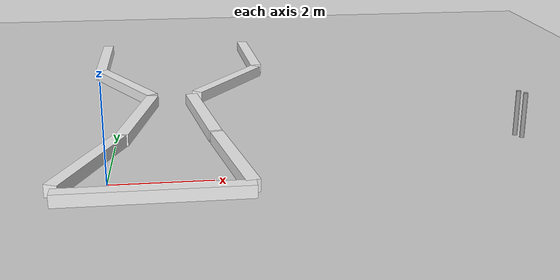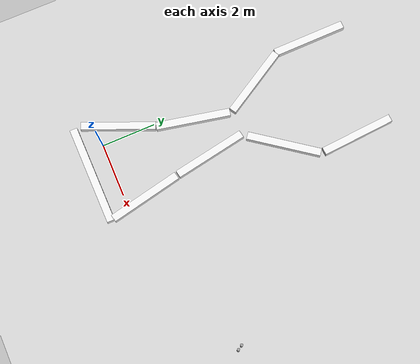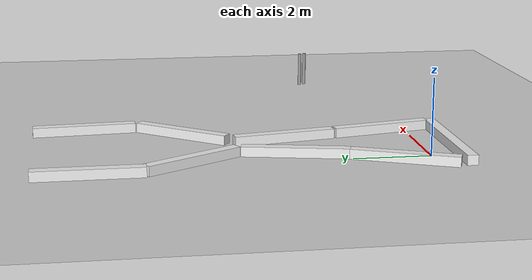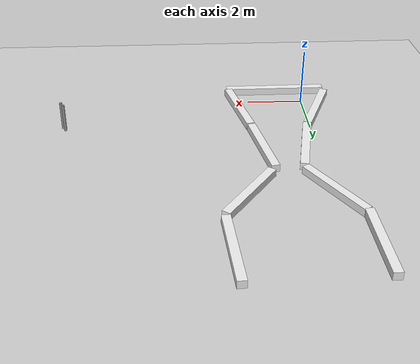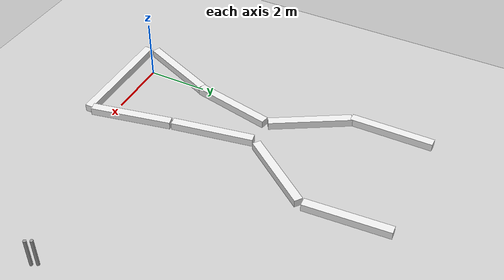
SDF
<sdf version="1.6">
 <world name="default">
  <light name="sun" type="directional">
   <pose>0 0 10 0 -0 0</pose>
   <diffuse>0.8 0.8 0.8 1</diffuse>
   <specular>0.1 0.1 0.1 1</specular>
   <attenuation>
    <range>1000</range>
    <constant>0.9</constant>
    <linear>0.01</linear>
    <quadratic>0.001</quadratic>
   </attenuation>
   <direction>-0.5 0.5 -1</direction>
  </light>
  <model name="unit_tracker">
   <link name="link">
    <pose>0.003083 0.120916 0 0 -0 0</pose>
    <inertial>
     <mass>1</mass>
     <inertia><ixx>0.145833</ixx><ixy>0</ixy><ixz>0</ixz><iyy>0.145833</iyy><iyz>0</iyz><izz>0.125</izz></inertia>
    </inertial>
    <visual name="visual">
     <geometry><cylinder><radius>0.05</radius><length>1</length></cylinder></geometry>
     <material>
      <script><name>Gazebo/Grey</name><uri>file://media/materials/scripts/gazebo.material</uri></script>
      <ambient>0.3 0.3 0.3 1</ambient>
      <diffuse>0.7 0.7 0.7 1</diffuse>
      <specular>0.01 0.01 0.01 1</specular>
      <emissive>0 0 0 1</emissive>
      <shader type="vertex"><normal_map>__default__</normal_map></shader>
     </material>
    </visual>
    <collision name="collision">
     <geometry><cylinder><radius>0.05</radius><length>1</length></cylinder></geometry>
     <surface>
      <friction>
       <ode><mu>1</mu><mu2>1</mu2><fdir1>0 0 0</fdir1><slip1>0</slip1><slip2>0</slip2></ode>
       <torsional>
        <coefficient>1</coefficient>
        <patch_radius>0</patch_radius>
        <surface_radius>0</surface_radius>
        <use_patch_radius>1</use_patch_radius>
        <ode><slip>0</slip></ode>
       </torsional>
      </friction>
      <bounce><restitution_coefficient>0</restitution_coefficient><threshold>1e+06</threshold></bounce>
      <contact>
       <collide_without_contact>0</collide_without_contact>
       <collide_without_contact_bitmask>1</collide_without_contact_bitmask>
       <collide_bitmask>1</collide_bitmask>
       <ode>
        <soft_cfm>0</soft_cfm>
        <soft_erp>0.2</soft_erp>
        <kp>1e+13</kp>
        <kd>1</kd>
        <max_vel>0.01</max_vel>
        <min_depth>0</min_depth>
       </ode>
       <bullet>
        <split_impulse>1</split_impulse>
        <split_impulse_penetration_threshold>-0.01</split_impulse_penetration_threshold>
        <soft_cfm>0</soft_cfm>
        <soft_erp>0.2</soft_erp>
        <kp>1e+13</kp>
        <kd>1</kd>
       </bullet>
      </contact>
     </surface>
    </collision>
   </link>
   <link name="link_clone">
    <pose>-0.090773 0.281567 0 0 -0 0</pose>
    <inertial>
     <mass>1</mass>
     <inertia><ixx>0.145833</ixx><ixy>0</ixy><ixz>0</ixz><iyy>0.145833</iyy><iyz>0</iyz><izz>0.125</izz></inertia>
    </inertial>
    <visual name="visual">
     <geometry><cylinder><radius>0.05</radius><length>1</length></cylinder></geometry>
     <material>
      <script><name>Gazebo/Grey</name><uri>file://media/materials/scripts/gazebo.material</uri></script>
      <ambient>0.3 0.3 0.3 1</ambient>
      <diffuse>0.7 0.7 0.7 1</diffuse>
      <specular>0.01 0.01 0.01 1</specular>
      <emissive>0 0 0 1</emissive>
      <shader type="vertex"><normal_map>__default__</normal_map></shader>
     </material>
    </visual>
    <collision name="collision">
     <geometry><cylinder><radius>0.05</radius><length>1</length></cylinder></geometry>
     <surface>
      <friction>
       <ode><mu>1</mu><mu2>1</mu2><fdir1>0 0 0</fdir1><slip1>0</slip1><slip2>0</slip2></ode>
       <torsional>
        <coefficient>1</coefficient>
        <patch_radius>0</patch_radius>
        <surface_radius>0</surface_radius>
        <use_patch_radius>1</use_patch_radius>
        <ode><slip>0</slip></ode>
       </torsional>
      </friction>
      <bounce><restitution_coefficient>0</restitution_coefficient><threshold>1e+06</threshold></bounce>
      <contact>
       <collide_without_contact>0</collide_without_contact>
       <collide_without_contact_bitmask>1</collide_without_contact_bitmask>
       <collide_bitmask>1</collide_bitmask>
       <ode>
        <soft_cfm>0</soft_cfm>
        <soft_erp>0.2</soft_erp>
        <kp>1e+13</kp>
        <kd>1</kd>
        <max_vel>0.01</max_vel>
        <min_depth>0</min_depth>
       </ode>
       <bullet>
        <split_impulse>1</split_impulse>
        <split_impulse_penetration_threshold>-0.01</split_impulse_penetration_threshold>
        <soft_cfm>0</soft_cfm>
        <soft_erp>0.2</soft_erp>
        <kp>1e+13</kp>
        <kd>1</kd>
       </bullet>
      </contact>
     </surface>
    </collision>
   </link>
   <static>0</static>
   <pose>8.68978 1.5 0.49999 -0 1e-06 4.7e-05</pose>
  </model>
  <model name="ground_plane">
   <static>1</static>
   <link name="link">
    <collision name="collision">
     <geometry><plane><normal>0 0 1</normal><size>100 100</size></plane></geometry>
     <surface><friction><ode><mu>100</mu><mu2>50</mu2></ode></friction></surface>
    </collision>
    <visual name="visual">
     <cast_shadows>0</cast_shadows>
     <geometry><plane><normal>0 0 1</normal><size>100 100</size></plane></geometry>
     <material>
      <script><uri>file://media/materials/scripts/gazebo.material</uri><name>Gazebo/Grey</name></script>
     </material>
    </visual>
   </link>
  </model>
  <gravity>0 0 -9.8</gravity>
  <magnetic_field>6e-06 2.3e-05 -4.2e-05</magnetic_field>
  <atmosphere type="adiabatic"/>
  <physics name="default_physics" default="0" type="ode">
   <max_step_size>0.001</max_step_size>
   <real_time_factor>1</real_time_factor>
   <real_time_update_rate>1000</real_time_update_rate>
  </physics>
  <scene><ambient>0.4 0.4 0.4 1</ambient><background>0.7 0.7 0.7 1</background><shadows>1</shadows></scene>
  <spherical_coordinates>
   <surface_model>EARTH_WGS84</surface_model>
   <latitude_deg>0</latitude_deg>
   <longitude_deg>0</longitude_deg>
   <elevation>0</elevation>
   <heading_deg>0</heading_deg>
  </spherical_coordinates>
  <model name="unit_box_0_clone">
   <pose>0.90563 -0.758707 0.127656 -0.000403 -7e-06 1.57411</pose>
   <link name="link">
    <inertial>
     <mass>1</mass>
     <inertia>
      <ixx>0.166667</ixx>
      <ixy>0</ixy>
      <ixz>0</ixz>
      <iyy>0.166667</iyy>
      <iyz>0</iyz>
      <izz>0.166667</izz>
     </inertia>
    </inertial>
    <collision name="collision"><geometry><box><size>0.280228 3.67509 0.256789</size></box></geometry></collision>
    <visual name="visual">
     <geometry><box><size>0.280228 3.67509 0.256789</size></box></geometry>
     <material>
      <script><name>Gazebo/White</name><uri>file://media/materials/scripts/gazebo.material</uri></script>
     </material>
    </visual>
   </link>
  </model>
  <model name="unit_box_0_clone_0">
   <pose>2.40639 0.696984 0.12839 -4e-06 -2e-06 0.207715</pose>
   <link name="link">
    <inertial>
     <mass>1</mass>
     <inertia>
      <ixx>0.166667</ixx>
      <ixy>0</ixy>
      <ixz>0</ixz>
      <iyy>0.166667</iyy>
      <iyz>0</iyz>
      <izz>0.166667</izz>
     </inertia>
    </inertial>
    <collision name="collision"><geometry><box><size>0.280228 2.7368 0.256789</size></box></geometry></collision>
    <visual name="visual">
     <geometry><box><size>0.280228 2.7368 0.256789</size></box></geometry>
     <material>
      <script><name>Gazebo/White</name><uri>file://media/materials/scripts/gazebo.material</uri></script>
     </material>
    </visual>
   </link>
  </model>
  <model name="unit_box_0_clone_0_clone">
   <pose>1.86346 3.44042 0.128395 0 -0 0.178407</pose>
   <link name="link">
    <inertial>
     <mass>1</mass>
     <inertia>
      <ixx>0.166667</ixx>
      <ixy>0</ixy>
      <ixz>0</ixz>
      <iyy>0.166667</iyy>
      <iyz>0</iyz>
      <izz>0.166667</izz>
     </inertia>
    </inertial>
    <collision name="collision"><geometry><box><size>0.280228 2.7368 0.256789</size></box></geometry></collision>
    <visual name="visual">
     <geometry><box><size>0.280228 2.7368 0.256789</size></box></geometry>
     <material>
      <script><name>Gazebo/White</name><uri>file://media/materials/scripts/gazebo.material</uri></script>
     </material>
    </visual>
   </link>
  </model>
  <model name="unit_box_0_clone_0_clone_0">
   <pose>-0.419478 0.788822 0.12839 5e-06 -2e-06 -0.400238</pose>
   <link name="link">
    <inertial>
     <mass>1</mass>
     <inertia>
      <ixx>0.166667</ixx>
      <ixy>0</ixy>
      <ixz>0</ixz>
      <iyy>0.166667</iyy>
      <iyz>0</iyz>
      <izz>0.166667</izz>
     </inertia>
    </inertial>
    <collision name="collision"><geometry><box><size>0.280228 2.7368 0.256789</size></box></geometry></collision>
    <visual name="visual">
     <geometry><box><size>0.280228 2.7368 0.256789</size></box></geometry>
     <material>
      <script><name>Gazebo/White</name><uri>file://media/materials/scripts/gazebo.material</uri></script>
     </material>
    </visual>
   </link>
  </model>
  <model name="unit_box_0_clone_0_clone_1">
   <pose>0.416989 3.38791 0.128395 0 1e-06 -0.204807</pose>
   <link name="link">
    <inertial>
     <mass>1</mass>
     <inertia>
      <ixx>0.166667</ixx>
      <ixy>0</ixy>
      <ixz>0</ixz>
      <iyy>0.166667</iyy>
      <iyz>0</iyz>
      <izz>0.166667</izz>
     </inertia>
    </inertial>
    <collision name="collision"><geometry><box><size>0.280228 2.7368 0.256789</size></box></geometry></collision>
    <visual name="visual">
     <geometry><box><size>0.280228 2.7368 0.256789</size></box></geometry>
     <material>
      <script><name>Gazebo/White</name><uri>file://media/materials/scripts/gazebo.material</uri></script>
     </material>
    </visual>
   </link>
  </model>
  <model name="unit_box_0_clone_0_clone_2">
   <pose>-0.014949 6.0118 0.128395 -1e-06 0 0.538059</pose>
   <link name="link">
    <inertial>
     <mass>1</mass>
     <inertia>
      <ixx>0.166667</ixx>
      <ixy>0</ixy>
      <ixz>0</ixz>
      <iyy>0.166667</iyy>
      <iyz>0</iyz>
      <izz>0.166667</izz>
     </inertia>
    </inertial>
    <collision name="collision"><geometry><box><size>0.280228 2.7368 0.256789</size></box></geometry></collision>
    <visual name="visual">
     <geometry><box><size>0.280228 2.7368 0.256789</size></box></geometry>
     <material>
      <script><name>Gazebo/White</name><uri>file://media/materials/scripts/gazebo.material</uri></script>
     </material>
    </visual>
   </link>
  </model>
  <model name="unit_box_0_clone_0_clone_3">
   <pose>2.57462 6.05802 0.128395 0 0 -0.636738</pose>
   <link name="link">
    <inertial>
     <mass>1</mass>
     <inertia>
      <ixx>0.166667</ixx>
      <ixy>0</ixy>
      <ixz>0</ixz>
      <iyy>0.166667</iyy>
      <iyz>0</iyz>
      <izz>0.166667</izz>
     </inertia>
    </inertial>
    <collision name="collision"><geometry><box><size>0.280228 2.7368 0.256789</size></box></geometry></collision>
    <visual name="visual">
     <geometry><box><size>0.280228 2.7368 0.256789</size></box></geometry>
     <material>
      <script><name>Gazebo/White</name><uri>file://media/materials/scripts/gazebo.material</uri></script>
     </material>
    </visual>
   </link>
  </model>
  <model name="unit_box_0_clone_0_clone_4">
   <pose>3.30408 8.64433 0.128395 0 -0 0.072012</pose>
   <link name="link">
    <inertial>
     <mass>1</mass>
     <inertia>
      <ixx>0.166667</ixx>
      <ixy>0</ixy>
      <ixz>0</ixz>
      <iyy>0.166667</iyy>
      <iyz>0</iyz>
      <izz>0.166667</izz>
     </inertia>
    </inertial>
    <collision name="collision"><geometry><box><size>0.280228 2.7368 0.256789</size></box></geometry></collision>
    <visual name="visual">
     <geometry><box><size>0.280228 2.7368 0.256789</size></box></geometry>
     <material>
      <script><name>Gazebo/White</name><uri>file://media/materials/scripts/gazebo.material</uri></script>
     </material>
    </visual>
   </link>
  </model>
  <model name="unit_box_0_clone_0_clone_5_clone">
   <pose>-0.75607 8.53932 0.128395 0 -0 0.011003</pose>
   <link name="link">
    <inertial>
     <mass>1</mass>
     <inertia>
      <ixx>0.166667</ixx>
      <ixy>0</ixy>
      <ixz>0</ixz>
      <iyy>0.166667</iyy>
      <iyz>0</iyz>
      <izz>0.166667</izz>
     </inertia>
    </inertial>
    <collision name="collision"><geometry><box><size>0.280228 2.7368 0.256789</size></box></geometry></collision>
    <visual name="visual">
     <geometry><box><size>0.280228 2.7368 0.256789</size></box></geometry>
     <material>
      <script><name>Gazebo/White</name><uri>file://media/materials/scripts/gazebo.material</uri></script>
     </material>
    </visual>
   </link>
  </model>
 </world>
</sdf>
